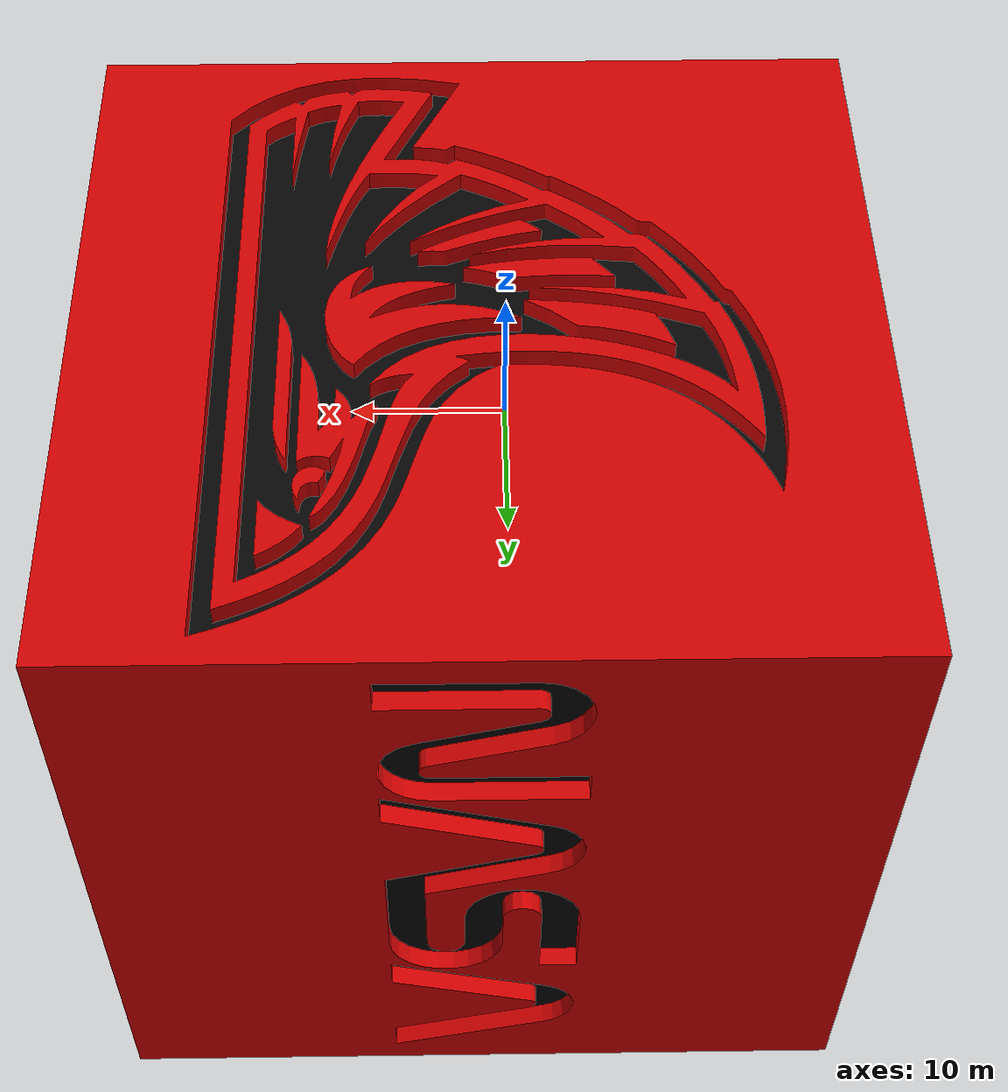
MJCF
<mujoco model="Cube">
  <default>
    <default class="visual">
      <geom group="2" type="mesh" contype="0" conaffinity="0"/>
    </default>
    <default class="collision">
      <geom group="3" type="mesh"/>
    </default>
  </default>
  <asset>
    <material name="204,0,0" specular="1.0" shininess="1.0" rgba="0.800000 0.000000 0.000000 1.000000"/>
    <material name="5,5,5" specular="1.0" shininess="1.0" rgba="0.019608 0.019608 0.019608 1.000000"/>
    <mesh file="Cube_0.obj"/>
    <mesh file="Cube_1.obj"/>
  </asset>
  <worldbody>
    <body name="Cube">
      <geom mesh="Cube_0" material="5,5,5" class="visual"/>
      <geom mesh="Cube_1" material="204,0,0" class="visual"/>
      <geom mesh="Cube_0" class="collision"/>
      <geom mesh="Cube_1" class="collision"/>
    </body>
  </worldbody>
</mujoco>
